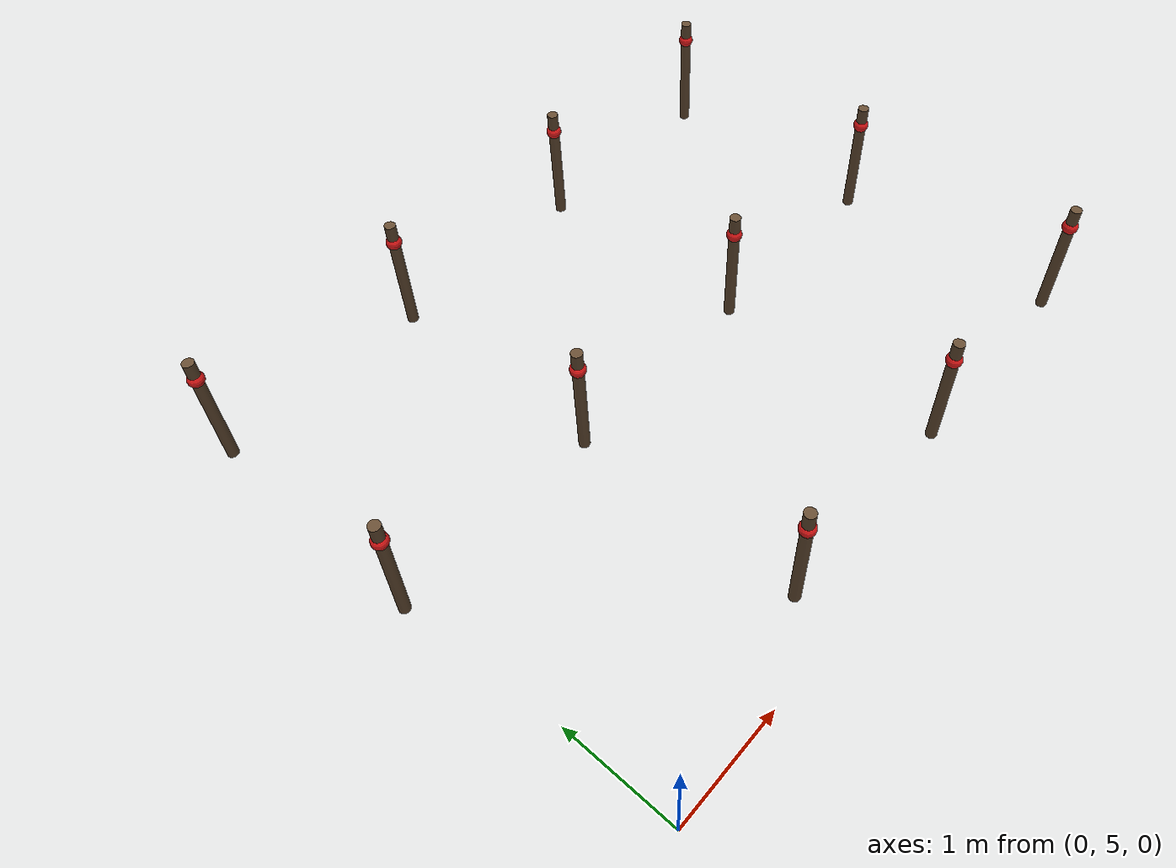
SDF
<sdf version="1.9">
 <world name="empty">
  <model name="row4_post_1">
   <static>true</static>
   <pose>2 5.5 -0.5 0 0 0</pose>
   <link name="vine_link">
    <collision name="post_collision">
     <geometry><cylinder><radius>0.05</radius><length>1.2</length></cylinder></geometry>
     <pose>0 0 0.6 0 0 0</pose>
    </collision>
    <visual name="post_visual">
     <geometry><cylinder><radius>0.05</radius><length>1.2</length></cylinder></geometry>
     <pose>0 0 0.6 0 0 0</pose>
     <material><diffuse>0.4 0.3 0.2 1</diffuse><ambient>0.4 0.3 0.2 1</ambient></material>
    </visual>
    <collision name="ball_collision">
     <geometry><sphere><radius>0.07</radius></sphere></geometry>
     <pose>0 0 1.0 0 0 0</pose>
    </collision>
    <visual name="ball_visual">
     <geometry><sphere><radius>0.07</radius></sphere></geometry>
     <pose>0 0 1.0 0 0 0</pose>
     <material><diffuse>0.9 0.1 0.1 1</diffuse><ambient>0.9 0.1 0.1 1</ambient></material>
    </visual>
   </link>
  </model>
  <model name="row4_post_2">
   <static>true</static>
   <pose>4 5.5 -0.5 0 0 0</pose>
   <link name="vine_link">
    <collision name="post_collision">
     <geometry><cylinder><radius>0.05</radius><length>1.2</length></cylinder></geometry>
     <pose>0 0 0.6 0 0 0</pose>
    </collision>
    <visual name="post_visual">
     <geometry><cylinder><radius>0.05</radius><length>1.2</length></cylinder></geometry>
     <pose>0 0 0.6 0 0 0</pose>
     <material><diffuse>0.4 0.3 0.2 1</diffuse><ambient>0.4 0.3 0.2 1</ambient></material>
    </visual>
    <collision name="ball_collision">
     <geometry><sphere><radius>0.07</radius></sphere></geometry>
     <pose>0 0 1.0 0 0 0</pose>
    </collision>
    <visual name="ball_visual">
     <geometry><sphere><radius>0.07</radius></sphere></geometry>
     <pose>0 0 1.0 0 0 0</pose>
     <material><diffuse>0.9 0.1 0.1 1</diffuse><ambient>0.9 0.1 0.1 1</ambient></material>
    </visual>
   </link>
  </model>
  <model name="row4_post_3">
   <static>true</static>
   <pose>6 5.5 -0.5 0 0 0</pose>
   <link name="vine_link">
    <collision name="post_collision">
     <geometry><cylinder><radius>0.05</radius><length>1.2</length></cylinder></geometry>
     <pose>0 0 0.6 0 0 0</pose>
    </collision>
    <visual name="post_visual">
     <geometry><cylinder><radius>0.05</radius><length>1.2</length></cylinder></geometry>
     <pose>0 0 0.6 0 0 0</pose>
     <material><diffuse>0.4 0.3 0.2 1</diffuse><ambient>0.4 0.3 0.2 1</ambient></material>
    </visual>
    <collision name="ball_collision">
     <geometry><sphere><radius>0.07</radius></sphere></geometry>
     <pose>0 0 1.0 0 0 0</pose>
    </collision>
    <visual name="ball_visual">
     <geometry><sphere><radius>0.07</radius></sphere></geometry>
     <pose>0 0 1.0 0 0 0</pose>
     <material><diffuse>0.9 0.1 0.1 1</diffuse><ambient>0.9 0.1 0.1 1</ambient></material>
    </visual>
   </link>
  </model>
  <model name="row5_post_00">
   <static>true</static>
   <pose>0 7.7 -0.5 0 0 0</pose>
   <link name="vine_link">
    <collision name="post_collision">
     <geometry><cylinder><radius>0.05</radius><length>1.2</length></cylinder></geometry>
     <pose>0 0 0.6 0 0 0</pose>
    </collision>
    <visual name="post_visual">
     <geometry><cylinder><radius>0.05</radius><length>1.2</length></cylinder></geometry>
     <pose>0 0 0.6 0 0 0</pose>
     <material><diffuse>0.4 0.3 0.2 1</diffuse><ambient>0.4 0.3 0.2 1</ambient></material>
    </visual>
    <collision name="ball_collision">
     <geometry><sphere><radius>0.07</radius></sphere></geometry>
     <pose>0 0 1.0 0 0 0</pose>
    </collision>
    <visual name="ball_visual">
     <geometry><sphere><radius>0.07</radius></sphere></geometry>
     <pose>0 0 1.0 0 0 0</pose>
     <material><diffuse>0.9 0.1 0.1 1</diffuse><ambient>0.9 0.1 0.1 1</ambient></material>
    </visual>
   </link>
  </model>
  <model name="row5_post_1">
   <static>true</static>
   <pose>2 7.7 -0.5 0 0 0</pose>
   <link name="vine_link">
    <collision name="post_collision">
     <geometry><cylinder><radius>0.05</radius><length>1.2</length></cylinder></geometry>
     <pose>0 0 0.6 0 0 0</pose>
    </collision>
    <visual name="post_visual">
     <geometry><cylinder><radius>0.05</radius><length>1.2</length></cylinder></geometry>
     <pose>0 0 0.6 0 0 0</pose>
     <material><diffuse>0.4 0.3 0.2 1</diffuse><ambient>0.4 0.3 0.2 1</ambient></material>
    </visual>
    <collision name="ball_collision">
     <geometry><sphere><radius>0.07</radius></sphere></geometry>
     <pose>0 0 1.0 0 0 0</pose>
    </collision>
    <visual name="ball_visual">
     <geometry><sphere><radius>0.07</radius></sphere></geometry>
     <pose>0 0 1.0 0 0 0</pose>
     <material><diffuse>0.9 0.1 0.1 1</diffuse><ambient>0.9 0.1 0.1 1</ambient></material>
    </visual>
   </link>
  </model>
  <model name="row5_post_2">
   <static>true</static>
   <pose>4 7.7 -0.5 0 0 0</pose>
   <link name="vine_link">
    <collision name="post_collision">
     <geometry><cylinder><radius>0.05</radius><length>1.2</length></cylinder></geometry>
     <pose>0 0 0.6 0 0 0</pose>
    </collision>
    <visual name="post_visual">
     <geometry><cylinder><radius>0.05</radius><length>1.2</length></cylinder></geometry>
     <pose>0 0 0.6 0 0 0</pose>
     <material><diffuse>0.4 0.3 0.2 1</diffuse><ambient>0.4 0.3 0.2 1</ambient></material>
    </visual>
    <collision name="ball_collision">
     <geometry><sphere><radius>0.07</radius></sphere></geometry>
     <pose>0 0 1.0 0 0 0</pose>
    </collision>
    <visual name="ball_visual">
     <geometry><sphere><radius>0.07</radius></sphere></geometry>
     <pose>0 0 1.0 0 0 0</pose>
     <material><diffuse>0.9 0.1 0.1 1</diffuse><ambient>0.9 0.1 0.1 1</ambient></material>
    </visual>
   </link>
  </model>
  <model name="row5_post_3">
   <static>true</static>
   <pose>6 7.7 -0.5 0 0 0</pose>
   <link name="vine_link">
    <collision name="post_collision">
     <geometry><cylinder><radius>0.05</radius><length>1.2</length></cylinder></geometry>
     <pose>0 0 0.6 0 0 0</pose>
    </collision>
    <visual name="post_visual">
     <geometry><cylinder><radius>0.05</radius><length>1.2</length></cylinder></geometry>
     <pose>0 0 0.6 0 0 0</pose>
     <material><diffuse>0.4 0.3 0.2 1</diffuse><ambient>0.4 0.3 0.2 1</ambient></material>
    </visual>
    <collision name="ball_collision">
     <geometry><sphere><radius>0.07</radius></sphere></geometry>
     <pose>0 0 1.0 0 0 0</pose>
    </collision>
    <visual name="ball_visual">
     <geometry><sphere><radius>0.07</radius></sphere></geometry>
     <pose>0 0 1.0 0 0 0</pose>
     <material><diffuse>0.9 0.1 0.1 1</diffuse><ambient>0.9 0.1 0.1 1</ambient></material>
    </visual>
   </link>
  </model>
  <model name="row6_post_00">
   <static>true</static>
   <pose>0 9.9 -0.5 0 0 0</pose>
   <link name="vine_link">
    <collision name="post_collision">
     <geometry><cylinder><radius>0.05</radius><length>1.2</length></cylinder></geometry>
     <pose>0 0 0.6 0 0 0</pose>
    </collision>
    <visual name="post_visual">
     <geometry><cylinder><radius>0.05</radius><length>1.2</length></cylinder></geometry>
     <pose>0 0 0.6 0 0 0</pose>
     <material><diffuse>0.4 0.3 0.2 1</diffuse><ambient>0.4 0.3 0.2 1</ambient></material>
    </visual>
    <collision name="ball_collision">
     <geometry><sphere><radius>0.07</radius></sphere></geometry>
     <pose>0 0 1.0 0 0 0</pose>
    </collision>
    <visual name="ball_visual">
     <geometry><sphere><radius>0.07</radius></sphere></geometry>
     <pose>0 0 1.0 0 0 0</pose>
     <material><diffuse>0.9 0.1 0.1 1</diffuse><ambient>0.9 0.1 0.1 1</ambient></material>
    </visual>
   </link>
  </model>
  <model name="row6_post_1">
   <static>true</static>
   <pose>2 9.9 -0.5 0 0 0</pose>
   <link name="vine_link">
    <collision name="post_collision">
     <geometry><cylinder><radius>0.05</radius><length>1.2</length></cylinder></geometry>
     <pose>0 0 0.6 0 0 0</pose>
    </collision>
    <visual name="post_visual">
     <geometry><cylinder><radius>0.05</radius><length>1.2</length></cylinder></geometry>
     <pose>0 0 0.6 0 0 0</pose>
     <material><diffuse>0.4 0.3 0.2 1</diffuse><ambient>0.4 0.3 0.2 1</ambient></material>
    </visual>
    <collision name="ball_collision">
     <geometry><sphere><radius>0.07</radius></sphere></geometry>
     <pose>0 0 1.0 0 0 0</pose>
    </collision>
    <visual name="ball_visual">
     <geometry><sphere><radius>0.07</radius></sphere></geometry>
     <pose>0 0 1.0 0 0 0</pose>
     <material><diffuse>0.9 0.1 0.1 1</diffuse><ambient>0.9 0.1 0.1 1</ambient></material>
    </visual>
   </link>
  </model>
  <model name="row6_post_2">
   <static>true</static>
   <pose>4 9.9 -0.5 0 0 0</pose>
   <link name="vine_link">
    <collision name="post_collision">
     <geometry><cylinder><radius>0.05</radius><length>1.2</length></cylinder></geometry>
     <pose>0 0 0.6 0 0 0</pose>
    </collision>
    <visual name="post_visual">
     <geometry><cylinder><radius>0.05</radius><length>1.2</length></cylinder></geometry>
     <pose>0 0 0.6 0 0 0</pose>
     <material><diffuse>0.4 0.3 0.2 1</diffuse><ambient>0.4 0.3 0.2 1</ambient></material>
    </visual>
    <collision name="ball_collision">
     <geometry><sphere><radius>0.07</radius></sphere></geometry>
     <pose>0 0 1.0 0 0 0</pose>
    </collision>
    <visual name="ball_visual">
     <geometry><sphere><radius>0.07</radius></sphere></geometry>
     <pose>0 0 1.0 0 0 0</pose>
     <material><diffuse>0.9 0.1 0.1 1</diffuse><ambient>0.9 0.1 0.1 1</ambient></material>
    </visual>
   </link>
  </model>
  <model name="row6_post_3">
   <static>true</static>
   <pose>6 9.9 -0.5 0 0 0</pose>
   <link name="vine_link">
    <collision name="post_collision">
     <geometry><cylinder><radius>0.05</radius><length>1.2</length></cylinder></geometry>
     <pose>0 0 0.6 0 0 0</pose>
    </collision>
    <visual name="post_visual">
     <geometry><cylinder><radius>0.05</radius><length>1.2</length></cylinder></geometry>
     <pose>0 0 0.6 0 0 0</pose>
     <material><diffuse>0.4 0.3 0.2 1</diffuse><ambient>0.4 0.3 0.2 1</ambient></material>
    </visual>
    <collision name="ball_collision">
     <geometry><sphere><radius>0.07</radius></sphere></geometry>
     <pose>0 0 1.0 0 0 0</pose>
    </collision>
    <visual name="ball_visual">
     <geometry><sphere><radius>0.07</radius></sphere></geometry>
     <pose>0 0 1.0 0 0 0</pose>
     <material><diffuse>0.9 0.1 0.1 1</diffuse><ambient>0.9 0.1 0.1 1</ambient></material>
    </visual>
   </link>
  </model>
 </world>
</sdf>
